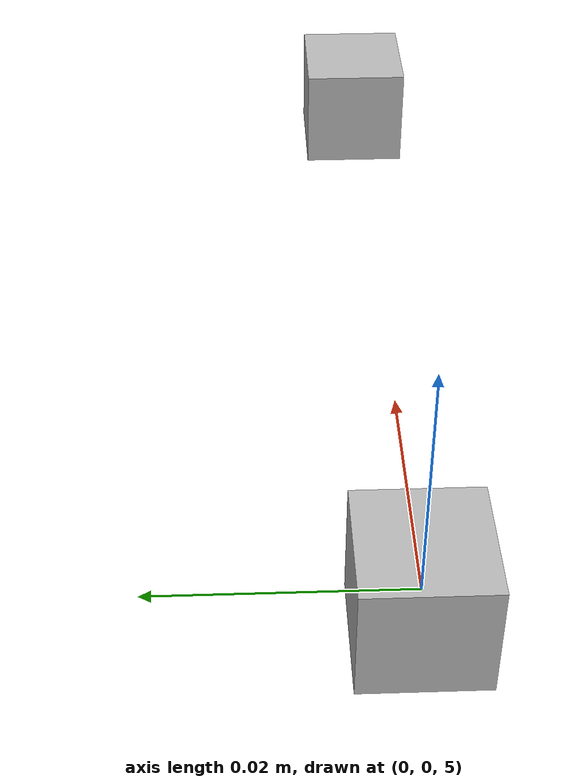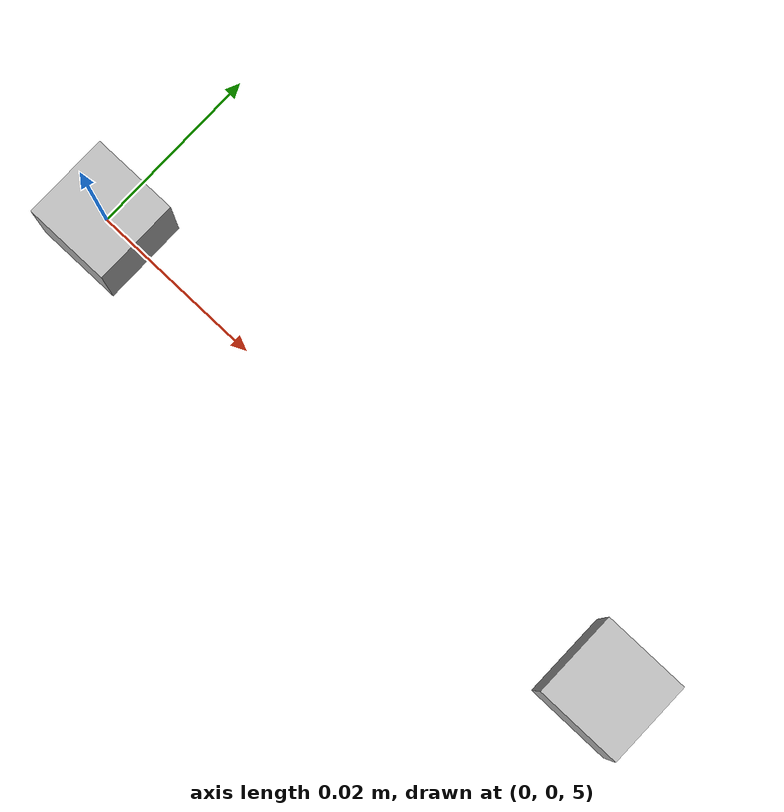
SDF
<sdf version="1.4">
 <world name="default">
  <light name="sun" type="directional">
   <pose>0 0 10 0 -0 0</pose>
   <diffuse>0.8 0.8 0.8 1</diffuse>
   <specular>0.2 0.2 0.2 1</specular>
   <attenuation>
    <range>1000</range>
    <constant>0.9</constant>
    <linear>0.01</linear>
    <quadratic>0.001</quadratic>
   </attenuation>
   <direction>-0.5 0.1 -0.9</direction>
   <spot><inner_angle>0</inner_angle><outer_angle>0</outer_angle><falloff>0</falloff></spot>
  </light>
  <gravity>0 0 0</gravity>
  <magnetic_field>6e-06 2.3e-05 -4.2e-05</magnetic_field>
  <atmosphere type="adiabatic"/>
  <physics type="ode">
   <max_step_size>0.001</max_step_size>
   <real_time_factor>1</real_time_factor>
   <real_time_update_rate>1000</real_time_update_rate>
  </physics>
  <scene><ambient>0.4 0.4 0.4 1</ambient><background>0.7 0.7 0.7 1</background><shadows>1</shadows></scene>
  <spherical_coordinates>
   <surface_model>EARTH_WGS84</surface_model>
   <latitude_deg>0</latitude_deg>
   <longitude_deg>0</longitude_deg>
   <elevation>0</elevation>
   <heading_deg>0</heading_deg>
  </spherical_coordinates>
  <model name="camera_top_left">
   <static>true</static>
   <pose>0 0 5.0 0 1.5708 0</pose>
   <link name="link_top_left">
    <visual name="visual_top_left"><geometry><box><size>0.01 0.01 0.01</size></box></geometry></visual>
    <sensor name="my_camera_top_left" type="camera">
     <camera>
      <horizontal_fov>1.3962634</horizontal_fov>
      <image><width>800</width><height>800</height></image>
      <clip><near>0.02</near><far>300</far></clip>
     </camera>
     <always_on>1</always_on>
     <update_rate>30</update_rate>
     <plugin name="camera_controller_top_left" filename="libgazebo_ros_camera.so">
      <alwaysOn>true</alwaysOn>
      <updateRate>0.0</updateRate>
      <imageTopicName>stereo_camera2/left/image_raw</imageTopicName>
      <cameraInfoTopicName>stereo_camera2/left/camera_info</cameraInfoTopicName>
      <frameName>camera_top_left</frameName>
     </plugin>
    </sensor>
   </link>
  </model>
  <model name="camera_top_right">
   <static>true</static>
   <pose>0.07 0 5.0 0 1.5708 0</pose>
   <link name="link_top_right">
    <visual name="visual_top_right"><geometry><box><size>0.01 0.01 0.01</size></box></geometry></visual>
    <sensor name="my_camera_top_right" type="camera">
     <camera>
      <horizontal_fov>1.3962634</horizontal_fov>
      <image><width>800</width><height>800</height></image>
      <clip><near>0.02</near><far>300</far></clip>
     </camera>
     <always_on>1</always_on>
     <update_rate>30</update_rate>
     <plugin name="camera_controller_top_right" filename="libgazebo_ros_camera.so">
      <alwaysOn>true</alwaysOn>
      <updateRate>0.0</updateRate>
      <imageTopicName>stereo_camera2/right/image_raw</imageTopicName>
      <cameraInfoTopicName>stereo_camera2/right/camera_info</cameraInfoTopicName>
      <frameName>camera_top_right</frameName>
     </plugin>
    </sensor>
   </link>
  </model>
 </world>
</sdf>
